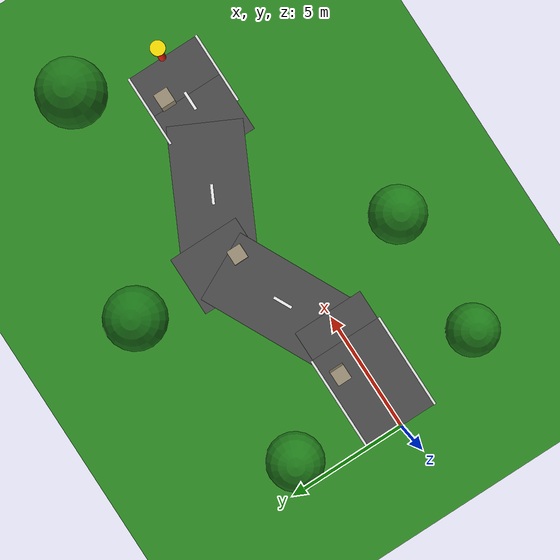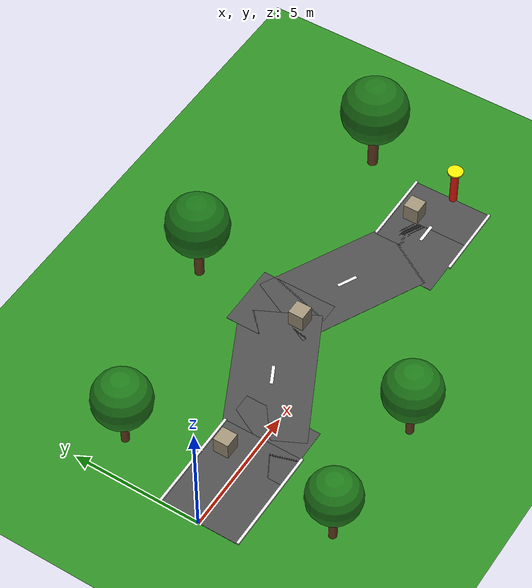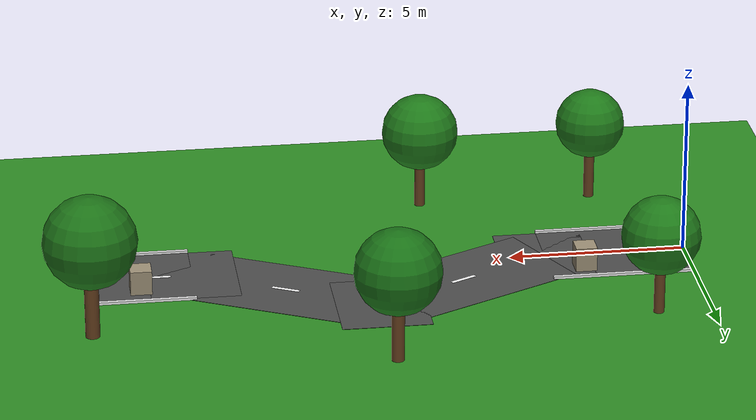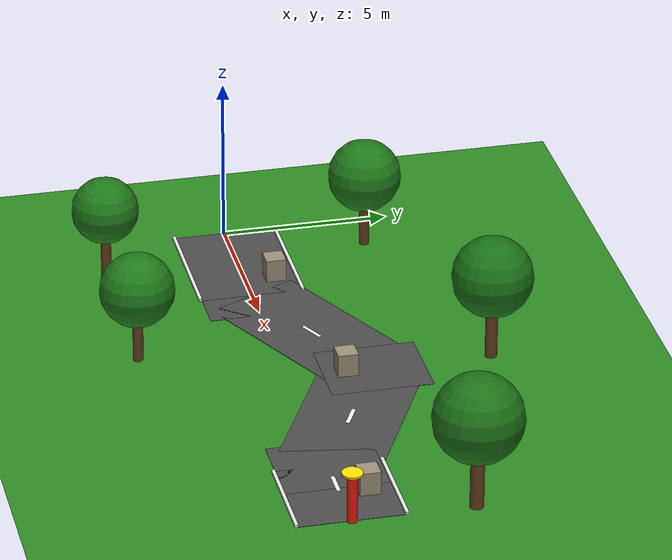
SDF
<?xml version="1.0" ?>
x+
   robot(0,0)                                 goal(17,0)

  Path: 4 asphalt box segments + junction patches → S-curve
    Seg1: (0,0)→(4,0)       center=(2,0)       rot=0
    Seg2: (4,0)→(9,2.5)     center=(6.5,1.25)  rot=+0.4636 rad (+26.6°)
    Seg3: (9,2.5)→(14,0)    center=(11.5,1.25) rot=-0.4636 rad (-26.6°)
    Seg4: (14,0)→(17,0)     center=(15.5,0)    rot=0
  All segments: 3 m wide, 0.01 m thick, raised 5 mm above grass.

  CLIPSeg semantics (optimizer MINIMIZES total_cost):
    "pavement"   cost=0.1 → LOW penalty  → preferred (robot stays on road)
    "green grass" cost=0.9 → HIGH penalty → penalized  (robot avoids grass)
-->
<sdf version="1.9">
  <world name="empty">

    <!-- ── Core physics / rendering plugins ─────────────────────────────── -->
    <plugin filename="gz-sim-physics-system"
            name="gz::sim::systems::Physics"/>
    <plugin filename="gz-sim-user-commands-system"
            name="gz::sim::systems::UserCommands"/>
    <plugin filename="gz-sim-scene-broadcaster-system"
            name="gz::sim::systems::SceneBroadcaster"/>
    <plugin filename="gz-sim-sensors-system"
            name="gz::sim::systems::Sensors">
      <render_engine>ogre2</render_engine>
    </plugin>

    <!-- ── Lighting ─────────────────────────────────────────────────────── -->
    <light type="directional" name="sun">
      <cast_shadows>true</cast_shadows>
      <pose>0 0 20 0 0.3 0.3</pose>
      <diffuse>1.0 0.98 0.92 1</diffuse>
      <specular>0.4 0.4 0.4 1</specular>
      <direction>-0.6 0.2 -0.8</direction>
      <attenuation>
        <range>1000</range>
        <constant>0.9</constant>
        <linear>0.01</linear>
        <quadratic>0.001</quadratic>
      </attenuation>
    </light>

    <light type="directional" name="ambient_fill">
      <cast_shadows>false</cast_shadows>
      <pose>0 0 10 0 -0.3 1.5</pose>
      <diffuse>0.4 0.5 0.55 1</diffuse>
      <specular>0.0 0.0 0.0 1</specular>
      <direction>0.3 -0.1 -0.9</direction>
    </light>

    <!-- ── Physics ──────────────────────────────────────────────────────── -->
    <physics name="1ms" type="ignored">
      <max_step_size>0.001</max_step_size>
      <real_time_factor>1.0</real_time_factor>
    </physics>

    <!-- ═══════════════════════════════════════════════════════════════════
         GROUND — Green grass (large flat plane)
    ════════════════════════════════════════════════════════════════════ -->
    <model name="grass_ground">
      <static>true</static>
      <pose>0 0 0 0 0 0</pose>
      <link name="link">
        <collision name="collision">
          <geometry>
            <plane>
              <normal>0 0 1</normal>
              <size>120 120</size>
            </plane>
          </geometry>
          <surface>
            <friction><ode><mu>0.8</mu><mu2>0.8</mu2></ode></friction>
          </surface>
        </collision>
        <visual name="visual">
          <geometry>
            <plane>
              <normal>0 0 1</normal>
              <size>120 120</size>
            </plane>
          </geometry>
          <material>
            <ambient>0.13 0.42 0.10 1</ambient>
            <diffuse>0.18 0.55 0.14 1</diffuse>
            <specular>0.02 0.06 0.02 1</specular>
          </material>
        </visual>
      </link>
    </model>

    <!-- Seg1: straight, (0,0)→(4,0), length=4m -->
    <model name="path_seg1">
      <static>true</static>
      <pose>2 0 0.005 0 0 0</pose>
      <link name="link">
        <collision name="collision">
          <geometry><box><size>4 3.0 0.01</size></box></geometry>
        </collision>
        <visual name="visual">
          <geometry><box><size>4 3.0 0.01</size></box></geometry>
          <material>
            <ambient>0.22 0.22 0.22 1</ambient>
            <diffuse>0.30 0.30 0.30 1</diffuse>
            <specular>0.05 0.05 0.05 1</specular>
          </material>
        </visual>
      </link>
    </model>

    <!-- Junction patch at P1=(4,0) fills corner gap between seg1 and seg2 -->
    <model name="path_junc1">
      <static>true</static>
      <pose>4 0 0.005 0 0 0</pose>
      <link name="link">
        <collision name="c"><geometry><box><size>2.5 3.0 0.01</size></box></geometry></collision>
        <visual name="v"><geometry><box><size>2.5 3.0 0.01</size></box></geometry>
          <material>
            <ambient>0.22 0.22 0.22 1</ambient>
            <diffuse>0.30 0.30 0.30 1</diffuse>
          </material>
        </visual>
      </link>
    </model>

    <!-- Seg2: curve up-right, (4,0)→(9,2.5), length=5.59m, rot=+26.6° -->
    <model name="path_seg2">
      <static>true</static>
      <pose>6.5 1.25 0.005 0 0 0.4636</pose>
      <link name="link">
        <collision name="collision">
          <geometry><box><size>5.59 3.0 0.01</size></box></geometry>
        </collision>
        <visual name="visual">
          <geometry><box><size>5.59 3.0 0.01</size></box></geometry>
          <material>
            <ambient>0.22 0.22 0.22 1</ambient>
            <diffuse>0.30 0.30 0.30 1</diffuse>
            <specular>0.05 0.05 0.05 1</specular>
          </material>
        </visual>
      </link>
    </model>

    <!-- Junction patch at P2=(9,2.5) -->
    <model name="path_junc2">
      <static>true</static>
      <pose>9 2.5 0.005 0 0 0</pose>
      <link name="link">
        <collision name="c"><geometry><box><size>2.5 3.0 0.01</size></box></geometry></collision>
        <visual name="v"><geometry><box><size>2.5 3.0 0.01</size></box></geometry>
          <material>
            <ambient>0.22 0.22 0.22 1</ambient>
            <diffuse>0.30 0.30 0.30 1</diffuse>
          </material>
        </visual>
      </link>
    </model>

    <!-- Seg3: curve down-right, (9,2.5)→(14,0), length=5.59m, rot=-26.6° -->
    <model name="path_seg3">
      <static>true</static>
      <pose>11.5 1.25 0.005 0 0 -0.4636</pose>
      <link name="link">
        <collision name="collision">
          <geometry><box><size>5.59 3.0 0.01</size></box></geometry>
        </collision>
        <visual name="visual">
          <geometry><box><size>5.59 3.0 0.01</size></box></geometry>
          <material>
            <ambient>0.22 0.22 0.22 1</ambient>
            <diffuse>0.30 0.30 0.30 1</diffuse>
            <specular>0.05 0.05 0.05 1</specular>
          </material>
        </visual>
      </link>
    </model>

    <!-- Junction patch at P3=(14,0) -->
    <model name="path_junc3">
      <static>true</static>
      <pose>14 0 0.005 0 0 0</pose>
      <link name="link">
        <collision name="c"><geometry><box><size>2.5 3.0 0.01</size></box></geometry></collision>
        <visual name="v"><geometry><box><size>2.5 3.0 0.01</size></box></geometry>
          <material>
            <ambient>0.22 0.22 0.22 1</ambient>
            <diffuse>0.30 0.30 0.30 1</diffuse>
          </material>
        </visual>
      </link>
    </model>

    <!-- Seg4: straight end, (14,0)→(17,0), length=3m -->
    <model name="path_seg4">
      <static>true</static>
      <pose>15.5 0 0.005 0 0 0</pose>
      <link name="link">
        <collision name="collision">
          <geometry><box><size>3 3.0 0.01</size></box></geometry>
        </collision>
        <visual name="visual">
          <geometry><box><size>3 3.0 0.01</size></box></geometry>
          <material>
            <ambient>0.22 0.22 0.22 1</ambient>
            <diffuse>0.30 0.30 0.30 1</diffuse>
            <specular>0.05 0.05 0.05 1</specular>
          </material>
        </visual>
      </link>
    </model>

    <!-- White centre-line dashes along each segment -->
    <model name="dash_1"><static>true</static><pose>1.5 0 0.012 0 0 0</pose>
      <link name="link"><visual name="v"><geometry><box><size>0.8 0.12 0.001</size></box></geometry>
        <material><ambient>0.95 0.95 0.95 1</ambient><diffuse>0.95 0.95 0.95 1</diffuse></material>
      </visual></link>
    </model>
    <model name="dash_2"><static>true</static><pose>3.0 0 0.012 0 0 0</pose>
      <link name="link"><visual name="v"><geometry><box><size>0.8 0.12 0.001</size></box></geometry>
        <material><ambient>0.95 0.95 0.95 1</ambient><diffuse>0.95 0.95 0.95 1</diffuse></material>
      </visual></link>
    </model>
    <!-- dash at centre of seg2 -->
    <model name="dash_3"><static>true</static><pose>6.5 1.25 0.012 0 0 0.4636</pose>
      <link name="link"><visual name="v"><geometry><box><size>0.8 0.12 0.001</size></box></geometry>
        <material><ambient>0.95 0.95 0.95 1</ambient><diffuse>0.95 0.95 0.95 1</diffuse></material>
      </visual></link>
    </model>
    <!-- dash at centre of seg3 -->
    <model name="dash_4"><static>true</static><pose>11.5 1.25 0.012 0 0 -0.4636</pose>
      <link name="link"><visual name="v"><geometry><box><size>0.8 0.12 0.001</size></box></geometry>
        <material><ambient>0.95 0.95 0.95 1</ambient><diffuse>0.95 0.95 0.95 1</diffuse></material>
      </visual></link>
    </model>
    <!-- dashes on seg4 -->
    <model name="dash_5"><static>true</static><pose>15.0 0 0.012 0 0 0</pose>
      <link name="link"><visual name="v"><geometry><box><size>0.8 0.12 0.001</size></box></geometry>
        <material><ambient>0.95 0.95 0.95 1</ambient><diffuse>0.95 0.95 0.95 1</diffuse></material>
      </visual></link>
    </model>

    <!-- Obstacle 1: left side of seg1, forces robot to hug right at start -->
    <model name="obstacle_seg1_left">
      <static>true</static>
      <pose>3.0 0.9 0.35 0 0 0</pose>
      <link name="link">
        <collision name="collision">
          <geometry><box><size>0.6 0.6 0.7</size></box></geometry>
        </collision>
        <visual name="visual">
          <geometry><box><size>0.6 0.6 0.7</size></box></geometry>
          <material>
            <ambient>0.55 0.50 0.42 1</ambient>
            <diffuse>0.62 0.57 0.47 1</diffuse>
            <specular>0.05 0.05 0.05 1</specular>
          </material>
        </visual>
      </link>
    </model>

    <!-- Obstacle 2: at peak of S-curve, right side — forces robot left through curve -->
    <model name="obstacle_apex_right">
      <static>true</static>
      <pose>9.0 1.7 0.35 0 0 0</pose>
      <link name="link">
        <collision name="collision">
          <geometry><box><size>0.6 0.6 0.7</size></box></geometry>
        </collision>
        <visual name="visual">
          <geometry><box><size>0.6 0.6 0.7</size></box></geometry>
          <material>
            <ambient>0.55 0.50 0.42 1</ambient>
            <diffuse>0.62 0.57 0.47 1</diffuse>
            <specular>0.05 0.05 0.05 1</specular>
          </material>
        </visual>
      </link>
    </model>

    <!-- Obstacle 3: left side of seg4, near goal -->
    <model name="obstacle_seg4_left">
      <static>true</static>
      <pose>15.5 0.8 0.35 0 0 0</pose>
      <link name="link">
        <collision name="collision">
          <geometry><box><size>0.6 0.6 0.7</size></box></geometry>
        </collision>
        <visual name="visual">
          <geometry><box><size>0.6 0.6 0.7</size></box></geometry>
          <material>
            <ambient>0.55 0.50 0.42 1</ambient>
            <diffuse>0.62 0.57 0.47 1</diffuse>
            <specular>0.05 0.05 0.05 1</specular>
          </material>
        </visual>
      </link>
    </model>

    <model name="goal_marker">
      <static>true</static>
      <pose>17.0 0 0.75 0 0 0</pose>
      <link name="link">
        <collision name="collision">
          <geometry><cylinder><radius>0.15</radius><length>1.5</length></cylinder></geometry>
        </collision>
        <visual name="pole">
          <geometry><cylinder><radius>0.15</radius><length>1.5</length></cylinder></geometry>
          <material>
            <ambient>0.85 0.08 0.05 1</ambient>
            <diffuse>0.95 0.10 0.05 1</diffuse>
            <specular>0.3 0.1 0.1 1</specular>
          </material>
        </visual>
      </link>
    </model>
    <model name="goal_cap">
      <static>true</static>
      <pose>17.0 0 1.52 0 0 0</pose>
      <link name="link">
        <visual name="cap">
          <geometry><cylinder><radius>0.30</radius><length>0.06</length></cylinder></geometry>
          <material>
            <ambient>0.95 0.85 0.0 1</ambient>
            <diffuse>1.0 0.90 0.0 1</diffuse>
            <specular>0.4 0.4 0.0 1</specular>
          </material>
        </visual>
      </link>
    </model>

    <!-- Near start, left side -->
    <model name="tree_l1"><static>true</static><pose>1.5 4.0 0 0 0 0</pose>
      <link name="trunk"><visual name="v"><pose>0 0 0.9 0 0 0</pose>
        <geometry><cylinder><radius>0.15</radius><length>1.8</length></cylinder></geometry>
        <material><ambient>0.35 0.22 0.10 1</ambient><diffuse>0.40 0.25 0.12 1</diffuse></material>
      </visual></link>
    </model>
    <model name="tree_l1_top"><static>true</static><pose>1.5 4.0 2.3 0 0 0</pose>
      <link name="leaves"><visual name="v">
        <geometry><sphere><radius>1.1</radius></sphere></geometry>
        <material><ambient>0.10 0.40 0.08 1</ambient><diffuse>0.12 0.48 0.10 1</diffuse></material>
      </visual></link>
    </model>

    <!-- Near start, right side -->
    <model name="tree_r1"><static>true</static><pose>2.0 -4.0 0 0 0 0</pose>
      <link name="trunk"><visual name="v"><pose>0 0 0.9 0 0 0</pose>
        <geometry><cylinder><radius>0.15</radius><length>1.8</length></cylinder></geometry>
        <material><ambient>0.35 0.22 0.10 1</ambient><diffuse>0.40 0.25 0.12 1</diffuse></material>
      </visual></link>
    </model>
    <model name="tree_r1_top"><static>true</static><pose>2.0 -4.0 2.3 0 0 0</pose>
      <link name="leaves"><visual name="v">
        <geometry><sphere><radius>1.0</radius></sphere></geometry>
        <material><ambient>0.10 0.40 0.08 1</ambient><diffuse>0.12 0.48 0.10 1</diffuse></material>
      </visual></link>
    </model>

    <!-- At S-curve peak, outer left side -->
    <model name="tree_peak_l"><static>true</static><pose>9.0 6.0 0 0 0 0</pose>
      <link name="trunk"><visual name="v"><pose>0 0 1.0 0 0 0</pose>
        <geometry><cylinder><radius>0.18</radius><length>2.0</length></cylinder></geometry>
        <material><ambient>0.35 0.22 0.10 1</ambient><diffuse>0.40 0.25 0.12 1</diffuse></material>
      </visual></link>
    </model>
    <model name="tree_peak_l_top"><static>true</static><pose>9.0 6.0 2.6 0 0 0</pose>
      <link name="leaves"><visual name="v">
        <geometry><sphere><radius>1.2</radius></sphere></geometry>
        <material><ambient>0.08 0.38 0.07 1</ambient><diffuse>0.10 0.45 0.09 1</diffuse></material>
      </visual></link>
    </model>

    <!-- Below S-curve, right side -->
    <model name="tree_r2"><static>true</static><pose>7.0 -4.0 0 0 0 0</pose>
      <link name="trunk"><visual name="v"><pose>0 0 0.9 0 0 0</pose>
        <geometry><cylinder><radius>0.15</radius><length>1.8</length></cylinder></geometry>
        <material><ambient>0.35 0.22 0.10 1</ambient><diffuse>0.40 0.25 0.12 1</diffuse></material>
      </visual></link>
    </model>
    <model name="tree_r2_top"><static>true</static><pose>7.0 -4.0 2.3 0 0 0</pose>
      <link name="leaves"><visual name="v">
        <geometry><sphere><radius>1.1</radius></sphere></geometry>
        <material><ambient>0.10 0.40 0.08 1</ambient><diffuse>0.12 0.48 0.10 1</diffuse></material>
      </visual></link>
    </model>

    <!-- Near goal, right framing -->
    <model name="tree_goal"><static>true</static><pose>17.0 3.5 0 0 0 0</pose>
      <link name="trunk"><visual name="v"><pose>0 0 1.1 0 0 0</pose>
        <geometry><cylinder><radius>0.20</radius><length>2.2</length></cylinder></geometry>
        <material><ambient>0.35 0.22 0.10 1</ambient><diffuse>0.40 0.25 0.12 1</diffuse></material>
      </visual></link>
    </model>
    <model name="tree_goal_top"><static>true</static><pose>17.0 3.5 2.8 0 0 0</pose>
      <link name="leaves"><visual name="v">
        <geometry><sphere><radius>1.3</radius></sphere></geometry>
        <material><ambient>0.09 0.38 0.07 1</ambient><diffuse>0.11 0.45 0.09 1</diffuse></material>
      </visual></link>
    </model>

    <model name="kerb_seg1_left">
      <static>true</static>
      <pose>2 1.55 0.04 0 0 0</pose>
      <link name="link">
        <collision name="c"><geometry><box><size>4 0.10 0.08</size></box></geometry></collision>
        <visual name="v"><geometry><box><size>4 0.10 0.08</size></box></geometry>
          <material><ambient>0.85 0.85 0.85 1</ambient><diffuse>0.90 0.90 0.90 1</diffuse></material>
        </visual>
      </link>
    </model>
    <model name="kerb_seg1_right">
      <static>true</static>
      <pose>2 -1.55 0.04 0 0 0</pose>
      <link name="link">
        <collision name="c"><geometry><box><size>4 0.10 0.08</size></box></geometry></collision>
        <visual name="v"><geometry><box><size>4 0.10 0.08</size></box></geometry>
          <material><ambient>0.85 0.85 0.85 1</ambient><diffuse>0.90 0.90 0.90 1</diffuse></material>
        </visual>
      </link>
    </model>
    <model name="kerb_seg4_left">
      <static>true</static>
      <pose>15.5 1.55 0.04 0 0 0</pose>
      <link name="link">
        <collision name="c"><geometry><box><size>3 0.10 0.08</size></box></geometry></collision>
        <visual name="v"><geometry><box><size>3 0.10 0.08</size></box></geometry>
          <material><ambient>0.85 0.85 0.85 1</ambient><diffuse>0.90 0.90 0.90 1</diffuse></material>
        </visual>
      </link>
    </model>
    <model name="kerb_seg4_right">
      <static>true</static>
      <pose>15.5 -1.55 0.04 0 0 0</pose>
      <link name="link">
        <collision name="c"><geometry><box><size>3 0.10 0.08</size></box></geometry></collision>
        <visual name="v"><geometry><box><size>3 0.10 0.08</size></box></geometry>
          <material><ambient>0.85 0.85 0.85 1</ambient><diffuse>0.90 0.90 0.90 1</diffuse></material>
        </visual>
      </link>
    </model>

  </world>
</sdf>
